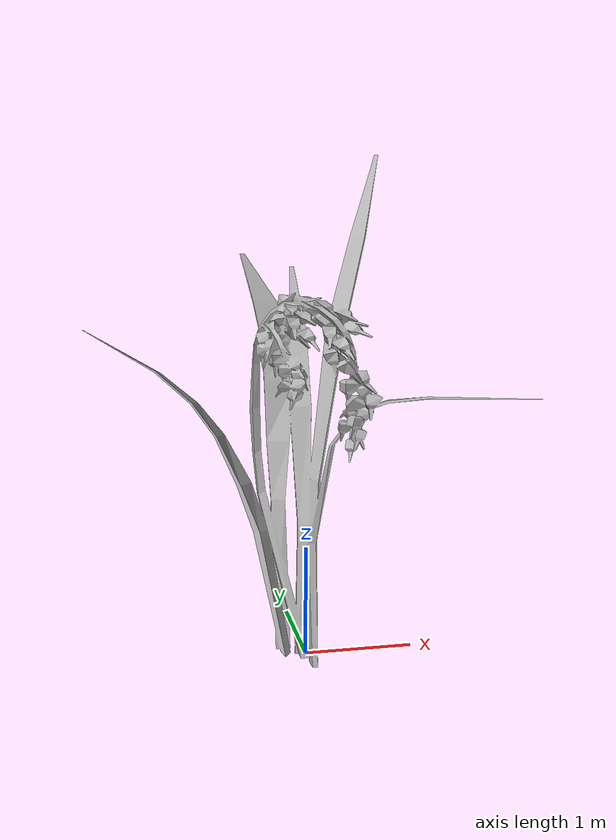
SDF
<?xml version="1.0"?>
<sdf version='1.5'>
  <model name='paddy'>
    <pose>0 0 0 1.507 0 0</pose>
    <static>True</static>
    <link name='base_paddy'>
    	<collision name="collision">
        <geometry>
            <mesh><uri>model://paddy/meshes/paddy.obj</uri>
            </mesh>
          </geometry>
      </collision>
        <visual name="visual">
          <geometry>
            <mesh><uri>model://paddy/meshes/paddy.obj</uri>
            </mesh>
          </geometry>
        </visual>
   </link>
 </model>
</sdf>
